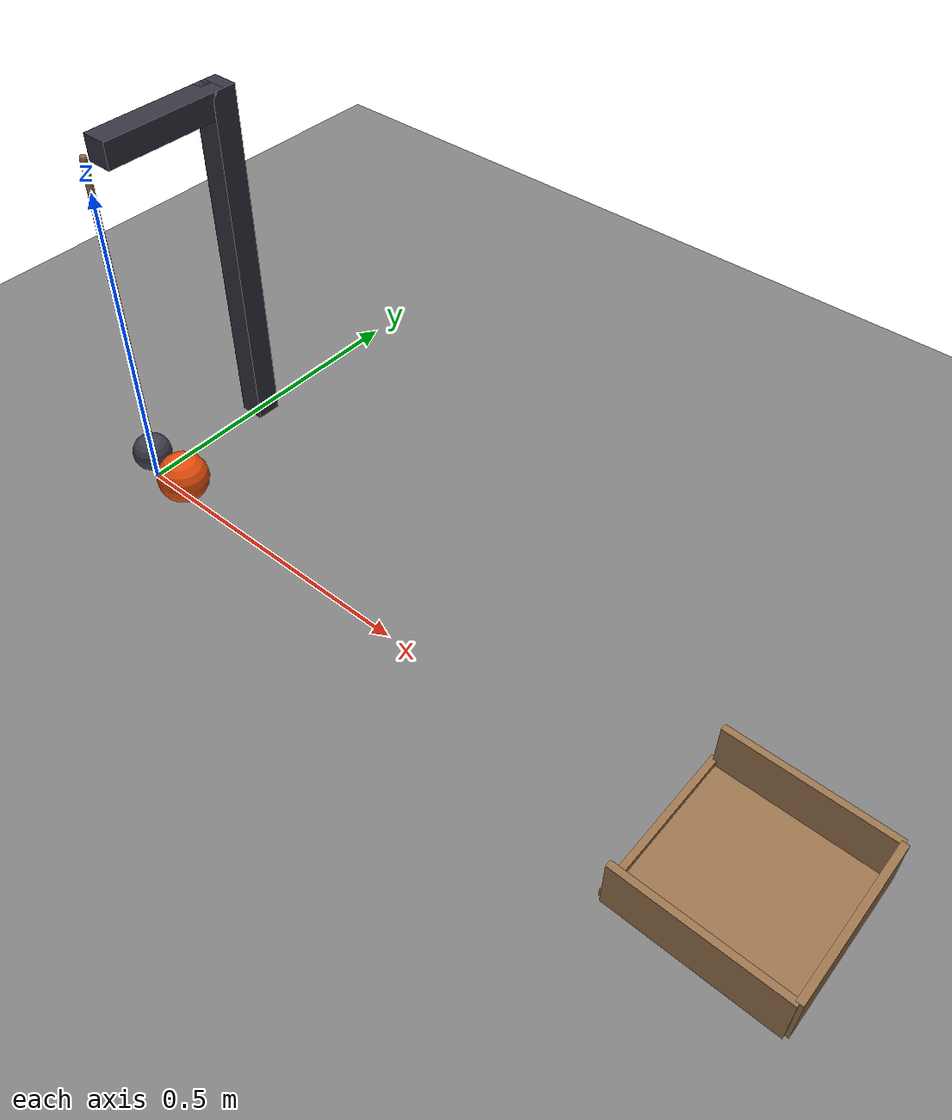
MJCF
<mujoco model="pendulum_strikes_ball_into_cup">
  <compiler angle="radian"/>
  <option timestep="0.002"/>
  <worldbody>
    <geom name="floor" type="plane" size="6 6 0.1" friction="0.8 0.005 0.0002"/>
    <body name="pendulum" pos="0 0 0.55">
      <joint name="pendulum_hinge" type="hinge" pos="0 0 0" axis="0 1 0"/>
      <geom name="pendulum" type="sphere" pos="0 0 -0.5" size="0.03" mass="0.3" solref="0.01 0.2" rgba="0.25 0.25 0.3 1"/>
      <geom name="pendulum rod" type="capsule" size="0.005" fromto="0 0 0 0 0 -0.47" mass="0.02" rgba="0.6 0.45 0.3 1"/>
    </body>
    <body name="stand arm">
      <geom name="stand arm" type="box" pos="0 0.12 0.55" size="0.02 0.1 0.02" contype="0" conaffinity="0" rgba="0.2 0.2 0.25 1"/>
    </body>
    <body name="stand post">
      <geom name="stand post" type="box" pos="0 0.22 0.285" size="0.02 0.02 0.285" contype="0" conaffinity="0" rgba="0.2 0.2 0.25 1"/>
    </body>
    <body name="ball" pos="0.072 0 0.04">
      <freejoint/>
      <geom name="ball" type="sphere" pos="0 0 0" size="0.04" mass="0.1" condim="6" friction="0.8 0.005 0.0002" rgba="0.9 0.3 0.05 1"/>
    </body>
    <body name="cup">
      <geom name="cup_base" type="box" pos="1.072 0 0.0025" size="0.12 0.12 0.0025" friction="0.8 0.005 0.002" solref="0.01 1" rgba="0.6 0.45 0.3 1"/>
      <geom name="cup_near_wall" type="box" pos="0.952 0 0.0075" size="0.005 0.12 0.0075" friction="0.8 0.005 0.002" solref="0.01 1" rgba="0.6 0.45 0.3 1"/>
      <geom name="cup_far_wall" type="box" pos="1.192 0 0.04" size="0.005 0.12 0.04" friction="0.8 0.005 0.002" solref="0.01 1" rgba="0.6 0.45 0.3 1"/>
      <geom name="cup_left_wall" type="box" pos="1.072 0.12 0.04" size="0.12 0.005 0.04" friction="0.8 0.005 0.002" solref="0.01 1" rgba="0.6 0.45 0.3 1"/>
      <geom name="cup_right_wall" type="box" pos="1.072 -0.12 0.04" size="0.12 0.005 0.04" friction="0.8 0.005 0.002" solref="0.01 1" rgba="0.6 0.45 0.3 1"/>
    </body>
  </worldbody>
  <keyframe>
    <key name="start" qpos="0.785398 0.072 0 0.04 1 0 0 0" qvel="0 0 0 0 0 0 0"/>
  </keyframe>
</mujoco>
